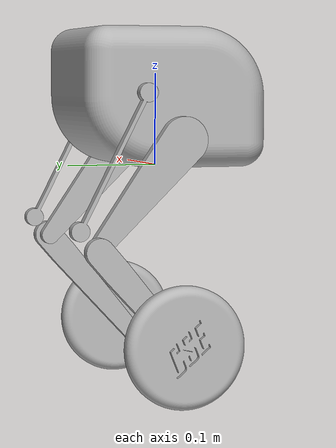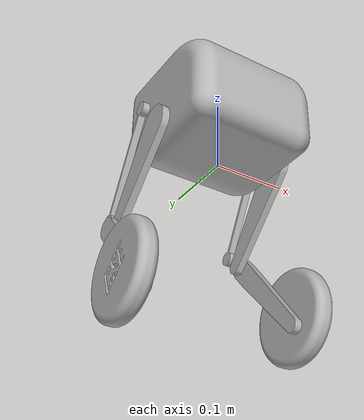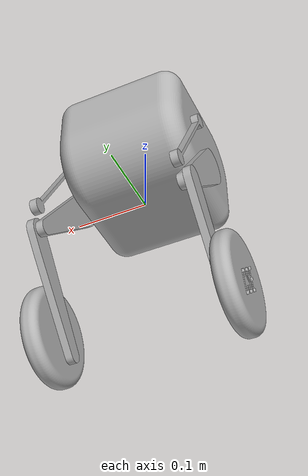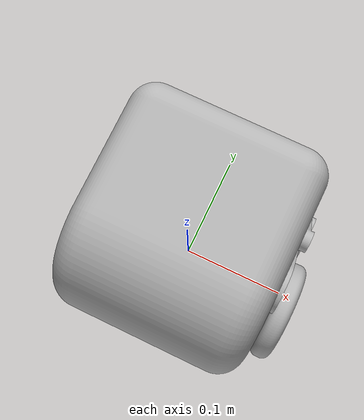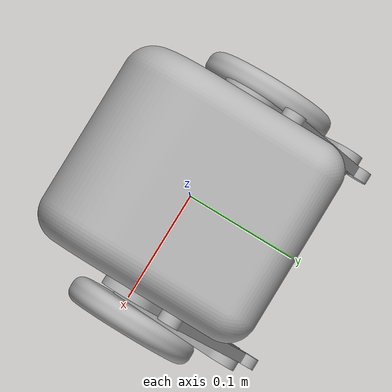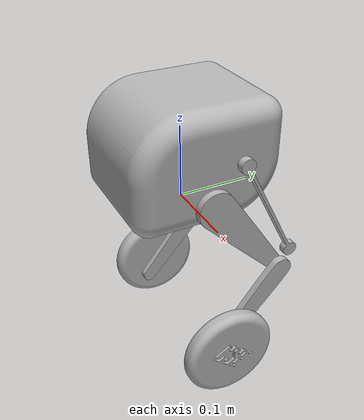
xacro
<?xml version="1.0" ?>
<robot name="csento" xmlns:xacro="http://www.ros.org/wiki/xacro">

<xacro:include filename="$(find csento_description)/urdf/materials.xacro" />
<xacro:include filename="$(find csento_description)/urdf/csento.trans" />
<xacro:include filename="$(find csento_description)/urdf/csento.gazebo" />

<link name="base_link">
  <inertial>
    <origin xyz="1.2071058247535626e-15 -1.3599040304185705e-15 0.07500000000000001" rpy="0 0 0"/>
    <mass value="5.047516780362731"/>
    <inertia ixx="0.02285" iyy="0.02121" izz="0.027439" ixy="-0.0" iyz="-0.001749" ixz="0.0"/>
  </inertial>
  <visual>
    <origin xyz="0 0 0" rpy="0 0 0"/>
    <geometry>
      <mesh filename="file://$(find csento_description)/meshes/base_link.stl" scale="0.001 0.001 0.001"/>
    </geometry>
    <material name="silver"/>
  </visual>
  <collision>
    <origin xyz="0 0 0" rpy="0 0 0"/>
    <geometry>
      <mesh filename="file://$(find csento_description)/meshes/base_link.stl" scale="0.001 0.001 0.001"/>
    </geometry>
  </collision>
</link>

<link name="left_hip_main_link_1">
  <inertial>
    <origin xyz="0.005000000000001198 0.03508964363789582 -0.011771944639040797" rpy="0 0 0"/>
    <mass value="0.06745093371390704"/>
    <inertia ixx="0.00017" iyy="9.9e-05" izz="7.2e-05" ixy="-0.0" iyz="7.6e-05" ixz="0.0"/>
  </inertial>
  <visual>
    <origin xyz="-0.09 0.0 -0.0" rpy="0 0 0"/>
    <geometry>
      <mesh filename="file://$(find csento_description)/meshes/left_hip_main_link_1.stl" scale="0.001 0.001 0.001"/>
    </geometry>
    <material name="silver"/>
  </visual>
  <collision>
    <origin xyz="-0.09 0.0 -0.0" rpy="0 0 0"/>
    <geometry>
      <mesh filename="file://$(find csento_description)/meshes/left_hip_main_link_1.stl" scale="0.001 0.001 0.001"/>
    </geometry>
  </collision>
</link>

<link name="left_hip_sub_link_1">
  <inertial>
    <origin xyz="0.0050000000000011285 0.07703716339337188 0.008526238886059377" rpy="0 0 0"/>
    <mass value="0.012644264262499203"/>
    <inertia ixx="5.3e-05" iyy="4.2e-05" izz="1.2e-05" ixy="0.0" iyz="2.2e-05" ixz="-0.0"/>
  </inertial>
  <visual>
    <origin xyz="-0.09 0.0 -0.0" rpy="0 0 0"/>
    <geometry>
      <mesh filename="file://$(find csento_description)/meshes/left_hip_sub_link_1.stl" scale="0.001 0.001 0.001"/>
    </geometry>
    <material name="silver"/>
  </visual>
  <collision>
    <origin xyz="-0.09 0.0 -0.0" rpy="0 0 0"/>
    <geometry>
      <mesh filename="file://$(find csento_description)/meshes/left_hip_sub_link_1.stl" scale="0.001 0.001 0.001"/>
    </geometry>
  </collision>
</link>

<link name="left_leg_link_1">
  <inertial>
    <origin xyz="0.00500000000000117 -0.046817233108449374 -0.05422686792796584" rpy="0 0 0"/>
    <mass value="0.049572840146082736"/>
    <inertia ixx="0.000134" iyy="7.7e-05" izz="5.8e-05" ixy="0.0" iyz="-6.3e-05" ixz="0.0"/>
  </inertial>
  <visual>
    <origin xyz="-0.1 -0.114074 0.062948" rpy="0 0 0"/>
    <geometry>
      <mesh filename="file://$(find csento_description)/meshes/left_leg_link_1.stl" scale="0.001 0.001 0.001"/>
    </geometry>
    <material name="silver"/>
  </visual>
  <collision>
    <origin xyz="-0.1 -0.114074 0.062948" rpy="0 0 0"/>
    <geometry>
      <mesh filename="file://$(find csento_description)/meshes/left_leg_link_1.stl" scale="0.001 0.001 0.001"/>
    </geometry>
  </collision>
</link>

<link name="left_wheel_1">
  <inertial>
    <origin xyz="0.012378168809641571 7.480733955976537e-06 -7.317319293598246e-06" rpy="0 0 0"/>
    <mass value="0.3297801928414847"/>
    <inertia ixx="0.000671" iyy="0.000352" izz="0.000351" ixy="-0.0" iyz="-0.0" ixz="0.0"/>
  </inertial>
  <visual>
    <origin xyz="-0.11 -0.008861 0.184812" rpy="0 0 0"/>
    <geometry>
      <mesh filename="file://$(find csento_description)/meshes/left_wheel_1.stl" scale="0.001 0.001 0.001"/>
    </geometry>
    <material name="silver"/>
  </visual>
  <collision>
    <origin xyz="-0.11 -0.008861 0.184812" rpy="0 0 0"/>
    <geometry>
      <mesh filename="file://$(find csento_description)/meshes/left_wheel_1.stl" scale="0.001 0.001 0.001"/>
    </geometry>
  </collision>
</link>

<link name="right_hip_main_link_1">
  <inertial>
    <origin xyz="-0.004999999999998783 0.03508964363789573 -0.011771944639040778" rpy="0 0 0"/>
    <mass value="0.06745093371390704"/>
    <inertia ixx="0.00017" iyy="9.9e-05" izz="7.2e-05" ixy="-0.0" iyz="7.6e-05" ixz="0.0"/>
  </inertial>
  <visual>
    <origin xyz="0.09 0.0 -0.0" rpy="0 0 0"/>
    <geometry>
      <mesh filename="file://$(find csento_description)/meshes/right_hip_main_link_1.stl" scale="0.001 0.001 0.001"/>
    </geometry>
    <material name="silver"/>
  </visual>
  <collision>
    <origin xyz="0.09 0.0 -0.0" rpy="0 0 0"/>
    <geometry>
      <mesh filename="file://$(find csento_description)/meshes/right_hip_main_link_1.stl" scale="0.001 0.001 0.001"/>
    </geometry>
  </collision>
</link>

<link name="right_hip_sub_link_1">
  <inertial>
    <origin xyz="-0.004999999999998825 0.07703716339337152 0.008526238886059634" rpy="0 0 0"/>
    <mass value="0.012644264262499203"/>
    <inertia ixx="5.3e-05" iyy="4.2e-05" izz="1.2e-05" ixy="0.0" iyz="2.2e-05" ixz="-0.0"/>
  </inertial>
  <visual>
    <origin xyz="0.09 0.0 -0.0" rpy="0 0 0"/>
    <geometry>
      <mesh filename="file://$(find csento_description)/meshes/right_hip_sub_link_1.stl" scale="0.001 0.001 0.001"/>
    </geometry>
    <material name="silver"/>
  </visual>
  <collision>
    <origin xyz="0.09 0.0 -0.0" rpy="0 0 0"/>
    <geometry>
      <mesh filename="file://$(find csento_description)/meshes/right_hip_sub_link_1.stl" scale="0.001 0.001 0.001"/>
    </geometry>
  </collision>
</link>

<link name="right_leg_link_1">
  <inertial>
    <origin xyz="-0.0049999999999987554 -0.04681723310844846 -0.05422686792796691" rpy="0 0 0"/>
    <mass value="0.049572840146082736"/>
    <inertia ixx="0.000134" iyy="7.7e-05" izz="5.8e-05" ixy="0.0" iyz="-6.3e-05" ixz="0.0"/>
  </inertial>
  <visual>
    <origin xyz="0.1 -0.114074 0.062948" rpy="0 0 0"/>
    <geometry>
      <mesh filename="file://$(find csento_description)/meshes/right_leg_link_1.stl" scale="0.001 0.001 0.001"/>
    </geometry>
    <material name="silver"/>
  </visual>
  <collision>
    <origin xyz="0.1 -0.114074 0.062948" rpy="0 0 0"/>
    <geometry>
      <mesh filename="file://$(find csento_description)/meshes/right_leg_link_1.stl" scale="0.001 0.001 0.001"/>
    </geometry>
  </collision>
</link>

<link name="right_wheel_1">
  <inertial>
    <origin xyz="-0.012378168968434744 -8.35699405809208e-06 6.356304932342294e-06" rpy="0 0 0"/>
    <mass value="0.32978061044955914"/>
    <inertia ixx="0.000671" iyy="0.000351" izz="0.000352" ixy="-0.0" iyz="-0.0" ixz="0.0"/>
  </inertial>
  <visual>
    <origin xyz="0.11 -0.008861 0.184812" rpy="0 0 0"/>
    <geometry>
      <mesh filename="file://$(find csento_description)/meshes/right_wheel_1.stl" scale="0.001 0.001 0.001"/>
    </geometry>
    <material name="silver"/>
  </visual>
  <collision>
    <origin xyz="0.11 -0.008861 0.184812" rpy="0 0 0"/>
    <geometry>
      <mesh filename="file://$(find csento_description)/meshes/right_wheel_1.stl" scale="0.001 0.001 0.001"/>
    </geometry>
  </collision>
</link>

<joint name="left_hip_joint" type="continuous">
  <origin xyz="0.09 0.0 0.0" rpy="0 0 0"/>
  <parent link="base_link"/>
  <child link="left_hip_main_link_1"/>
  <axis xyz="1.0 0.0 0.0"/>
</joint>

<joint name="left_knee_joint" type="continuous">
  <origin xyz="0.01 0.095775 -0.084141" rpy="0 0 0"/>
  <parent link="left_hip_main_link_1"/>
  <child link="left_leg_link_1"/>
  <axis xyz="1.0 0.0 -0.0"/>
  <mimic joint="left_hip_joint" multiplier="-1.0" offset="0.0"/>
</joint>

<joint name="left_sub_joint" type="continuous">
  <origin xyz="0.09 0.0 0.0" rpy="0 0 0"/>
  <parent link="base_link"/>
  <child link="left_hip_sub_link_1"/>
  <axis xyz="1.0 0.0 0.0"/>
  <mimic joint="left_hip_joint" multiplier="1.0" offset="0.0"/>
</joint>

<joint name="left_wheel_joint" type="continuous">
  <origin xyz="0.01 -0.086914 -0.100671" rpy="0 0 0"/>
  <parent link="left_leg_link_1"/>
  <child link="left_wheel_1"/>
  <axis xyz="1.0 0.0 -0.0"/>
</joint>

<joint name="right_hip_joint" type="continuous">
  <origin xyz="-0.09 0.0 0.0" rpy="0 0 0"/>
  <parent link="base_link"/>
  <child link="right_hip_main_link_1"/>
  <axis xyz="-1.0 0.0 0.0"/>
</joint>

<joint name="right_knee_joint" type="continuous">
  <origin xyz="-0.01 0.095775 -0.084141" rpy="0 0 0"/>
  <parent link="right_hip_main_link_1"/>
  <child link="right_leg_link_1"/>
  <axis xyz="-1.0 0.0 0.0"/>
  <mimic joint="right_hip_joint" multiplier="-1.0" offset="0.0"/>
</joint>

<joint name="right_sub_joint" type="continuous">
  <origin xyz="-0.09 0.0 0.0" rpy="0 0 0"/>
  <parent link="base_link"/>
  <child link="right_hip_sub_link_1"/>
  <axis xyz="-1.0 0.0 0.0"/>
  <mimic joint="right_hip_joint" multiplier="1.0" offset="0.0"/>
</joint>

<joint name="right_wheel_joint" type="continuous">
  <origin xyz="-0.01 -0.086914 -0.100671" rpy="0 0 0"/>
  <parent link="right_leg_link_1"/>
  <child link="right_wheel_1"/>
  <axis xyz="-1.0 0.0 0.0"/>
</joint>

</robot>

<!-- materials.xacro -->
<robot name="csento" xmlns:xacro="http://www.ros.org/wiki/xacro" >

<material name="silver">
  <color rgba="0.700 0.700 0.700 1.000"/>
</material>

</robot>

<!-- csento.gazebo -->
<robot name="csento" xmlns:xacro="http://www.ros.org/wiki/xacro" >

<xacro:property name="body_color" value="Gazebo/Silver" />

<gazebo>
  <plugin name="control" filename="libgazebo_ros_control.so"/>
</gazebo>
<gazebo reference="base_link">
  <material>${body_color}</material>
  <mu1>0.2</mu1>
  <mu2>0.2</mu2>
  <self_collide>true</self_collide>
  <gravity>true</gravity>
</gazebo>

<gazebo reference="left_hip_main_link_1">
  <material>${body_color}</material>
  <mu1>0.2</mu1>
  <mu2>0.2</mu2>
  <self_collide>true</self_collide>
</gazebo>

<gazebo reference="left_hip_sub_link_1">
  <material>${body_color}</material>
  <mu1>0.2</mu1>
  <mu2>0.2</mu2>
  <self_collide>true</self_collide>
</gazebo>

<gazebo reference="left_leg_link_1">
  <material>${body_color}</material>
  <mu1>0.2</mu1>
  <mu2>0.2</mu2>
  <self_collide>true</self_collide>
</gazebo>

<gazebo reference="left_leg_link_1">
  <material>${body_color}</material>
  <mu1>0.2</mu1>
  <mu2>0.2</mu2>
  <self_collide>true</self_collide>
</gazebo>

<gazebo reference="right_hip_main_link_1">
  <material>${body_color}</material>
  <mu1>0.2</mu1>
  <mu2>0.2</mu2>
  <self_collide>true</self_collide>
</gazebo>

<gazebo reference="right_hip_sub_link_1">
  <material>${body_color}</material>
  <mu1>0.2</mu1>
  <mu2>0.2</mu2>
  <self_collide>true</self_collide>
</gazebo>

<gazebo reference="right_leg_link_1">
  <material>${body_color}</material>
  <mu1>0.2</mu1>
  <mu2>0.2</mu2>
  <self_collide>true</self_collide>
</gazebo>

<gazebo reference="right_leg_link_1">
  <material>${body_color}</material>
  <mu1>0.2</mu1>
  <mu2>0.2</mu2>
  <self_collide>true</self_collide>
</gazebo>

<gazebo reference="right_wheel_1">
  <material>${body_color}</material>
  <mu1>0.2</mu1>
  <mu2>0.2</mu2>
  <self_collide>true</self_collide>
</gazebo>

<gazebo reference="left_wheel_1">
  <material>${body_color}</material>
  <mu1>0.2</mu1>
  <mu2>0.2</mu2>
  <self_collide>true</self_collide>
</gazebo>

</robot>
